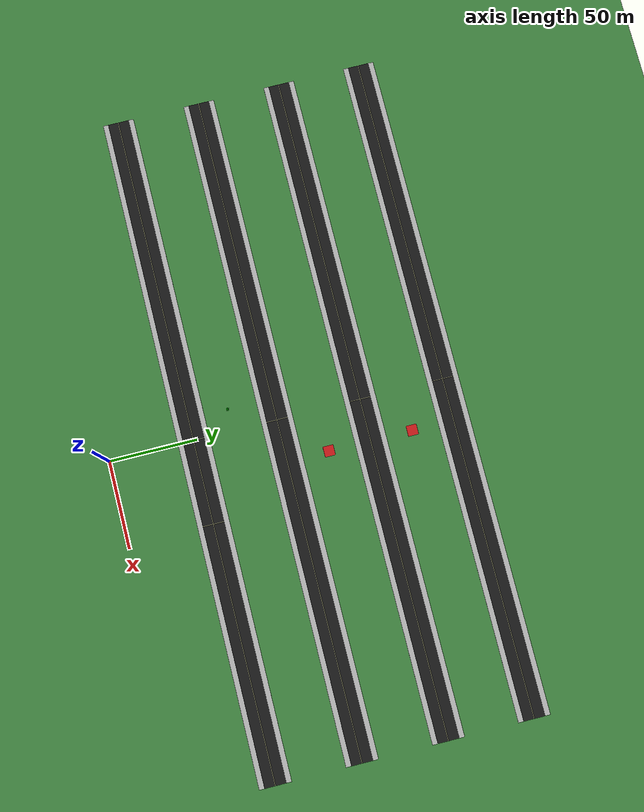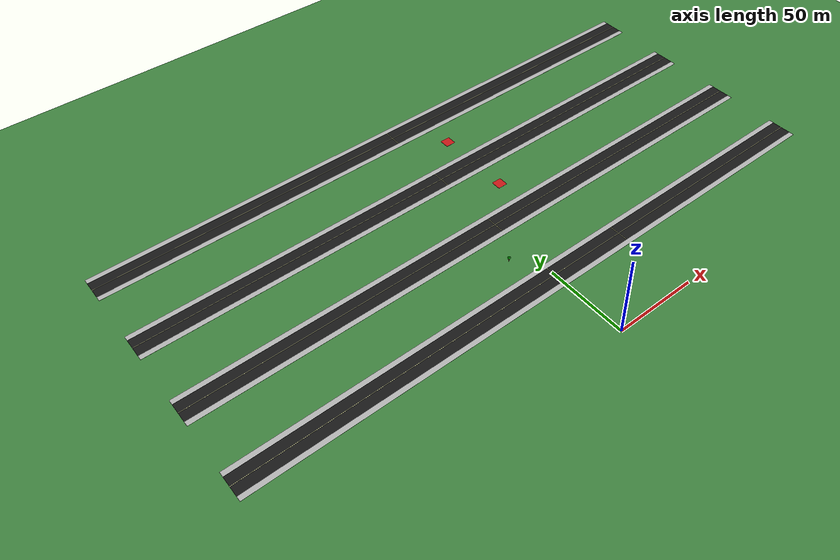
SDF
<sdf version="1.9">
 <world name="earthquake_world">
  <model name="ground_plane">
   <static>true</static>
   <link name="link">
    <collision name="collision">
     <geometry><plane><normal>0 0 1</normal><size>1000 1000</size></plane></geometry>
    </collision>
    <visual name="visual">
     <geometry><plane><normal>0 0 1</normal><size>1000 1000</size></plane></geometry>
     <material><ambient>0.25 0.52 0.25 1</ambient><diffuse>0.25 0.52 0.25 1</diffuse></material>
    </visual>
   </link>
  </model>
  <model name="hroad_5">
   <static>true</static>
   <pose>0.00 48.00 0.010 0 0 0</pose>
   <link name="link">
    <visual name="visual">
     <geometry><box><size>384.000 12.000 0.020</size></box></geometry>
     <material><ambient>0.10 0.10 0.10 1</ambient><diffuse>0.10 0.10 0.10 1</diffuse></material>
    </visual>
   </link>
  </model>
  <model name="hside_top_5">
   <static>true</static>
   <pose>0.00 55.50 0.030 0 0 0</pose>
   <link name="link">
    <visual name="visual">
     <geometry><box><size>384.000 3.000 0.060</size></box></geometry>
     <material><ambient>0.72 0.72 0.72 1</ambient><diffuse>0.72 0.72 0.72 1</diffuse></material>
    </visual>
   </link>
  </model>
  <model name="hside_bottom_5">
   <static>true</static>
   <pose>0.00 40.50 0.030 0 0 0</pose>
   <link name="link">
    <visual name="visual">
     <geometry><box><size>384.000 3.000 0.060</size></box></geometry>
     <material><ambient>0.72 0.72 0.72 1</ambient><diffuse>0.72 0.72 0.72 1</diffuse></material>
    </visual>
   </link>
  </model>
  <model name="hline_5">
   <static>true</static>
   <pose>0.00 48.00 0.041 0 0 0</pose>
   <link name="link">
    <visual name="visual">
     <geometry><box><size>384.000 0.300 0.005</size></box></geometry>
     <material><ambient>0.95 0.95 0.70 1</ambient><diffuse>0.95 0.95 0.70 1</diffuse></material>
    </visual>
   </link>
  </model>
  <model name="hroad_6">
   <static>true</static>
   <pose>0.00 96.00 0.010 0 0 0</pose>
   <link name="link">
    <visual name="visual">
     <geometry><box><size>384.000 12.000 0.020</size></box></geometry>
     <material><ambient>0.10 0.10 0.10 1</ambient><diffuse>0.10 0.10 0.10 1</diffuse></material>
    </visual>
   </link>
  </model>
  <model name="hside_top_6">
   <static>true</static>
   <pose>0.00 103.50 0.030 0 0 0</pose>
   <link name="link">
    <visual name="visual">
     <geometry><box><size>384.000 3.000 0.060</size></box></geometry>
     <material><ambient>0.72 0.72 0.72 1</ambient><diffuse>0.72 0.72 0.72 1</diffuse></material>
    </visual>
   </link>
  </model>
  <model name="hside_bottom_6">
   <static>true</static>
   <pose>0.00 88.50 0.030 0 0 0</pose>
   <link name="link">
    <visual name="visual">
     <geometry><box><size>384.000 3.000 0.060</size></box></geometry>
     <material><ambient>0.72 0.72 0.72 1</ambient><diffuse>0.72 0.72 0.72 1</diffuse></material>
    </visual>
   </link>
  </model>
  <model name="hline_6">
   <static>true</static>
   <pose>0.00 96.00 0.041 0 0 0</pose>
   <link name="link">
    <visual name="visual">
     <geometry><box><size>384.000 0.300 0.005</size></box></geometry>
     <material><ambient>0.95 0.95 0.70 1</ambient><diffuse>0.95 0.95 0.70 1</diffuse></material>
    </visual>
   </link>
  </model>
  <model name="hroad_7">
   <static>true</static>
   <pose>0.00 144.00 0.010 0 0 0</pose>
   <link name="link">
    <visual name="visual">
     <geometry><box><size>384.000 12.000 0.020</size></box></geometry>
     <material><ambient>0.10 0.10 0.10 1</ambient><diffuse>0.10 0.10 0.10 1</diffuse></material>
    </visual>
   </link>
  </model>
  <model name="hside_top_7">
   <static>true</static>
   <pose>0.00 151.50 0.030 0 0 0</pose>
   <link name="link">
    <visual name="visual">
     <geometry><box><size>384.000 3.000 0.060</size></box></geometry>
     <material><ambient>0.72 0.72 0.72 1</ambient><diffuse>0.72 0.72 0.72 1</diffuse></material>
    </visual>
   </link>
  </model>
  <model name="hside_bottom_7">
   <static>true</static>
   <pose>0.00 136.50 0.030 0 0 0</pose>
   <link name="link">
    <visual name="visual">
     <geometry><box><size>384.000 3.000 0.060</size></box></geometry>
     <material><ambient>0.72 0.72 0.72 1</ambient><diffuse>0.72 0.72 0.72 1</diffuse></material>
    </visual>
   </link>
  </model>
  <model name="hline_7">
   <static>true</static>
   <pose>0.00 144.00 0.041 0 0 0</pose>
   <link name="link">
    <visual name="visual">
     <geometry><box><size>384.000 0.300 0.005</size></box></geometry>
     <material><ambient>0.95 0.95 0.70 1</ambient><diffuse>0.95 0.95 0.70 1</diffuse></material>
    </visual>
   </link>
  </model>
  <model name="hroad_8">
   <static>true</static>
   <pose>0.00 192.00 0.010 0 0 0</pose>
   <link name="link">
    <visual name="visual">
     <geometry><box><size>384.000 12.000 0.020</size></box></geometry>
     <material><ambient>0.10 0.10 0.10 1</ambient><diffuse>0.10 0.10 0.10 1</diffuse></material>
    </visual>
   </link>
  </model>
  <model name="hside_top_8">
   <static>true</static>
   <pose>0.00 199.50 0.030 0 0 0</pose>
   <link name="link">
    <visual name="visual">
     <geometry><box><size>384.000 3.000 0.060</size></box></geometry>
     <material><ambient>0.72 0.72 0.72 1</ambient><diffuse>0.72 0.72 0.72 1</diffuse></material>
    </visual>
   </link>
  </model>
  <model name="hside_bottom_8">
   <static>true</static>
   <pose>0.00 184.50 0.030 0 0 0</pose>
   <link name="link">
    <visual name="visual">
     <geometry><box><size>384.000 3.000 0.060</size></box></geometry>
     <material><ambient>0.72 0.72 0.72 1</ambient><diffuse>0.72 0.72 0.72 1</diffuse></material>
    </visual>
   </link>
  </model>
  <model name="hline_8">
   <static>true</static>
   <pose>0.00 192.00 0.041 0 0 0</pose>
   <link name="link">
    <visual name="visual">
     <geometry><box><size>384.000 0.300 0.005</size></box></geometry>
     <material><ambient>0.95 0.95 0.70 1</ambient><diffuse>0.95 0.95 0.70 1</diffuse></material>
    </visual>
   </link>
  </model>
  <model name="intersection_5_4">
   <static>true</static>
   <pose>0.00 48.00 0.041 0 0 0</pose>
   <link name="link">
    <visual name="visual">
     <geometry><box><size>12.000 0.300 0.005</size></box></geometry>
     <material><ambient>0.95 0.95 0.70 1</ambient><diffuse>0.95 0.95 0.70 1</diffuse></material>
    </visual>
   </link>
  </model>
  <model name="intersection_cross_5_4">
   <static>true</static>
   <pose>0.00 48.00 0.041 0 0 0</pose>
   <link name="link">
    <visual name="visual">
     <geometry><box><size>0.300 12.000 0.005</size></box></geometry>
     <material><ambient>0.95 0.95 0.70 1</ambient><diffuse>0.95 0.95 0.70 1</diffuse></material>
    </visual>
   </link>
  </model>
  <model name="intersection_5_5">
   <static>true</static>
   <pose>48.00 48.00 0.041 0 0 0</pose>
   <link name="link">
    <visual name="visual">
     <geometry><box><size>12.000 0.300 0.005</size></box></geometry>
     <material><ambient>0.95 0.95 0.70 1</ambient><diffuse>0.95 0.95 0.70 1</diffuse></material>
    </visual>
   </link>
  </model>
  <model name="intersection_cross_5_5">
   <static>true</static>
   <pose>48.00 48.00 0.041 0 0 0</pose>
   <link name="link">
    <visual name="visual">
     <geometry><box><size>0.300 12.000 0.005</size></box></geometry>
     <material><ambient>0.95 0.95 0.70 1</ambient><diffuse>0.95 0.95 0.70 1</diffuse></material>
    </visual>
   </link>
  </model>
  <model name="intersection_6_4">
   <static>true</static>
   <pose>0.00 96.00 0.041 0 0 0</pose>
   <link name="link">
    <visual name="visual">
     <geometry><box><size>12.000 0.300 0.005</size></box></geometry>
     <material><ambient>0.95 0.95 0.70 1</ambient><diffuse>0.95 0.95 0.70 1</diffuse></material>
    </visual>
   </link>
  </model>
  <model name="intersection_cross_6_4">
   <static>true</static>
   <pose>0.00 96.00 0.041 0 0 0</pose>
   <link name="link">
    <visual name="visual">
     <geometry><box><size>0.300 12.000 0.005</size></box></geometry>
     <material><ambient>0.95 0.95 0.70 1</ambient><diffuse>0.95 0.95 0.70 1</diffuse></material>
    </visual>
   </link>
  </model>
  <model name="intersection_6_5">
   <static>true</static>
   <pose>48.00 96.00 0.041 0 0 0</pose>
   <link name="link">
    <visual name="visual">
     <geometry><box><size>12.000 0.300 0.005</size></box></geometry>
     <material><ambient>0.95 0.95 0.70 1</ambient><diffuse>0.95 0.95 0.70 1</diffuse></material>
    </visual>
   </link>
  </model>
  <model name="intersection_7_4">
   <static>true</static>
   <pose>0.00 144.00 0.041 0 0 0</pose>
   <link name="link">
    <visual name="visual">
     <geometry><box><size>12.000 0.300 0.005</size></box></geometry>
     <material><ambient>0.95 0.95 0.70 1</ambient><diffuse>0.95 0.95 0.70 1</diffuse></material>
    </visual>
   </link>
  </model>
  <model name="intersection_cross_7_4">
   <static>true</static>
   <pose>0.00 144.00 0.041 0 0 0</pose>
   <link name="link">
    <visual name="visual">
     <geometry><box><size>0.300 12.000 0.005</size></box></geometry>
     <material><ambient>0.95 0.95 0.70 1</ambient><diffuse>0.95 0.95 0.70 1</diffuse></material>
    </visual>
   </link>
  </model>
  <model name="intersection_8_4">
   <static>true</static>
   <pose>0.00 192.00 0.041 0 0 0</pose>
   <link name="link">
    <visual name="visual">
     <geometry><box><size>12.000 0.300 0.005</size></box></geometry>
     <material><ambient>0.95 0.95 0.70 1</ambient><diffuse>0.95 0.95 0.70 1</diffuse></material>
    </visual>
   </link>
  </model>
  <model name="intersection_cross_8_4">
   <static>true</static>
   <pose>0.00 192.00 0.041 0 0 0</pose>
   <link name="link">
    <visual name="visual">
     <geometry><box><size>0.300 12.000 0.005</size></box></geometry>
     <material><ambient>0.95 0.95 0.70 1</ambient><diffuse>0.95 0.95 0.70 1</diffuse></material>
    </visual>
   </link>
  </model>
  <model name="park_tree_5_3_4">
   <static>true</static>
   <pose>-12.19 70.55 0.00 0 0 0</pose>
   <link name="link">
    <visual name="trunk">
     <pose>0 0 1.25 0 0 0</pose>
     <geometry><cylinder><radius>0.2</radius><length>2.5</length></cylinder></geometry>
     <material><ambient>0.45 0.25 0.1 1</ambient><diffuse>0.45 0.25 0.1 1</diffuse></material>
    </visual>
    <visual name="leaves1">
     <pose>0 0 2.75 0 0 0</pose>
     <geometry><sphere><radius>0.8</radius></sphere></geometry>
     <material><ambient>0.0 0.6 0.0 1</ambient><diffuse>0.0 0.6 0.0 1</diffuse></material>
    </visual>
    <visual name="leaves2">
     <pose>0.3 0 2.95 0 0 0</pose>
     <geometry><sphere><radius>0.6</radius></sphere></geometry>
     <material><ambient>0.0 0.7 0.0 1</ambient><diffuse>0.0 0.7 0.0 1</diffuse></material>
    </visual>
    <visual name="leaves3">
     <pose>-0.3 0.2 2.85 0 0 0</pose>
     <geometry><sphere><radius>0.6</radius></sphere></geometry>
     <material><ambient>0.0 0.5 0.0 1</ambient><diffuse>0.0 0.5 0.0 1</diffuse></material>
    </visual>
   </link>
  </model>
  <model name="landing_pad_6_4">
   <static>true</static>
   <pose>24.00 120.00 0.05 0 0 0</pose>
   <link name="link">
    <visual name="visual">
     <geometry><box><size>6 6 0.1</size></box></geometry>
     <material><ambient>0.8 0.1 0.1 1</ambient><diffuse>0.8 0.1 0.1 1</diffuse></material>
    </visual>
   </link>
  </model>
  <model name="landing_pad_7_4">
   <static>true</static>
   <pose>24.00 168.00 0.05 0 0 0</pose>
   <link name="link">
    <visual name="visual">
     <geometry><box><size>6 6 0.1</size></box></geometry>
     <material><ambient>0.8 0.1 0.1 1</ambient><diffuse>0.8 0.1 0.1 1</diffuse></material>
    </visual>
   </link>
  </model>
 </world>
</sdf>
